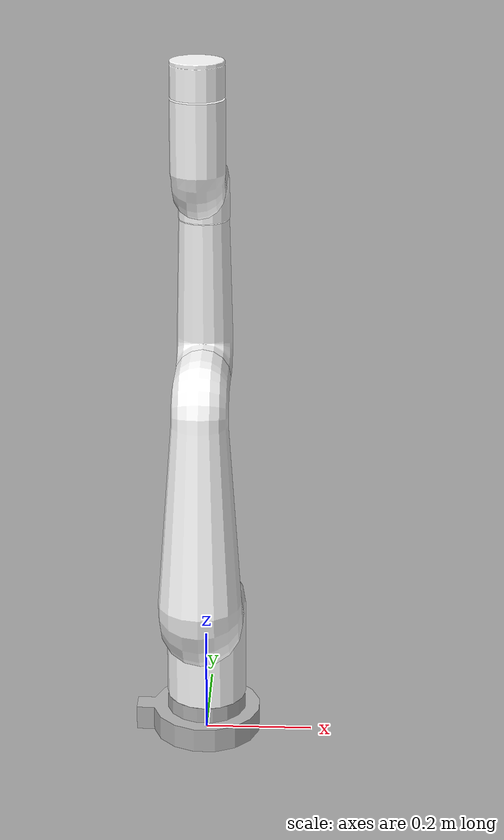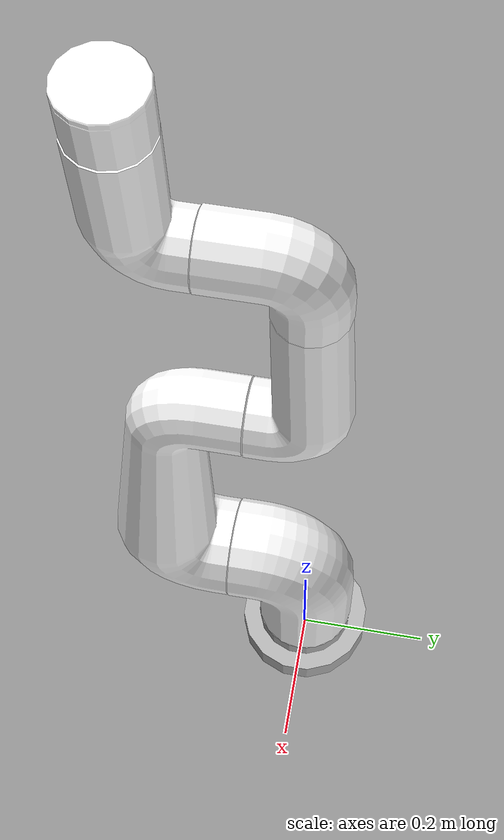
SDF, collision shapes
<?xml version="1.0"?>
<sdf version="1.7">
  <model name="indy7">
   <link name="base_link">
    <inertial>
      <pose>0 0 0 0 0 0</pose>
      <mass>1.59306955</mass>
      <inertia>
          <ixx>0.00572623</ixx>
          <ixy>0.00000251</ixy>
          <ixz>-0.00011380</ixz>
          <iyy>0.00558959</iyy>
          <iyz>-0.00000014</iyz>
          <izz>0.00966674</izz>
      </inertia>
      </inertial>

    <visual name="base_link_visual">
        <pose>0 0 0 0 0 0</pose>
      <geometry>
        <mesh>
        <uri>meshes/visual/Indy7_0.obj</uri>
        </mesh>
      </geometry>
        <material>
          <diffuse>0.7 0.7 0.7 1.0</diffuse>
        </material>
    </visual>
    <collision name="base_link_collision">
        <pose>0 0 0 0 0 0</pose>
        <geometry>
          <mesh>
          <uri>meshes/collision/Indy7_0.obj</uri>
          </mesh>
        </geometry>
    </collision>
  </link>

   <link name="shoulder_link">
    <pose >0 0 0.0775 0 0 0</pose>
    <inertial>
      <pose>0 0 0 0 0 0</pose>
      <mass>11.8030102</mass>
      <inertia>
          <ixx>0.15418559</ixx>
          <ixy>-0.00000235</ixy>
          <ixz>0.00001739</ixz>
          <iyy>0.12937017</iyy>
          <iyz>-0.04854267</iyz>
          <izz>0.05964415</izz>
      </inertia>
      </inertial>

    <visual name="shoulder_link_visual">
        <pose>0 0 0 0 0 0</pose>
      <geometry>
        <mesh>
        <uri>meshes/visual/Indy7_1.obj</uri>
        </mesh>
      </geometry>
        <material>
          <diffuse>1.0 1.0 1.0 1.0</diffuse>
        </material>
    </visual>
    <collision name="shoulder_link_collision">
        <pose>0 0 0 0 0 0</pose>
        <geometry>
          <mesh>
          <uri>meshes/collision/Indy7_1.obj</uri>
          </mesh>
        </geometry>
    </collision>
  </link>

    <joint name="joint0" type="revolute">
      <child>shoulder_link</child>
      <parent>base_link</parent>

      <axis>

        <xyz expressed_in="__model__">0 0 1</xyz>
        <limit>
          <lower>-2.96706</lower>
          <upper>2.96706</upper>
          <effort>300</effort>
          <velocity>10</velocity>
        </limit>
        <dynamics>
          <damping>0.0</damping>
          <friction>0</friction>
          <spring_reference>0</spring_reference>
          <spring_stiffness>0</spring_stiffness>
        </dynamics>
      </axis>
    </joint>

   <link name="upper_arm_link">
    <pose relative_to="shoulder_link">0 -0.109 0.222 1.57079632679 1.57079632679 0</pose>

    <inertial>
      <pose>0 0 0 0 0 0</pose>
      <mass>7.99292141</mass>
      <inertia>
          <ixx>0.29356980</ixx>
          <ixy>-0.00000040</ixy>
          <ixz>0.00001441</ixz>
          <iyy>0.28094142</iyy>
          <iyz>0.03727972</iyz>
          <izz>0.03620609</izz>
      </inertia>
      </inertial>

    <visual name="upper_arm_link_visual">
        <pose>0 0 0 0 0 0</pose>
      <geometry>
        <mesh>
        <uri>meshes/visual/Indy7_2.obj</uri>
        </mesh>
      </geometry>
        <material>
          <diffuse>1.0 1.0 1.0 1.0</diffuse>
        </material>
    </visual>
    <collision name="upper_arm_link_collision">
        <pose>0 0 0 0 0 0</pose>
        <geometry>
          <mesh>
          <uri>meshes/collision/Indy7_2.obj</uri>
          </mesh>
        </geometry>
    </collision>
  </link>

    <joint name="joint1" type="revolute">
      <parent>shoulder_link</parent>
      <child>upper_arm_link</child>
      <pose relative_to="shoulder_link">0 -0.109 0.222 1.57079632679 1.57079632679 0</pose>
      <axis>
        <xyz expressed_in="__model__">0 -1 0</xyz>
        <limit>
          <lower>-3.05432619099</lower>
          <upper>3.05432619099</upper>
          <effort>1000</effort>
          <velocity>1</velocity>
        </limit>
        <dynamics>
          <damping>0.0</damping>
          <friction>0</friction>
          <spring_reference>0</spring_reference>
          <spring_stiffness>0</spring_stiffness>
        </dynamics>
      </axis>
    </joint>

   <link name="forearm_link">
    <pose relative_to="upper_arm_link">-0.45000000 0 -0.03050000 0 0 0</pose>
    <inertial>
      <pose>0 0 0 0 0 0</pose>
    <mass>2.99134127</mass>
    <inertia>
      <ixx>0.03424593</ixx>
      <ixy>0.00000149</ixy>
      <ixz>0.00000724</ixz>
      <iyy>0.03406024</iyy>
      <iyz>0.00186009</iyz>
      <izz>0.00450477</izz>
    </inertia>
      </inertial>

    <visual name="forearm_link_visual">
        <pose>0 0 0 0 0 0</pose>
      <geometry>
        <mesh>
        <uri>meshes/visual/Indy7_3.obj</uri>
        </mesh>
      </geometry>
        <material>
          <diffuse>1.0 1.0 1.0 1.0</diffuse>
        </material>
    </visual>
    <collision name="forearm_link_collision">
        <pose>0 0 0 0 0 0</pose>
        <geometry>
          <mesh>
          <uri>meshes/collision/Indy7_3.obj</uri>
          </mesh>
        </geometry>
    </collision>
  </link>

    <joint name="joint2" type="revolute">
      <parent>upper_arm_link</parent>
      <child>forearm_link</child>
      <pose relative_to="upper_arm_link">-0.45000000 0 -0.03050000 0 0 0</pose>
      <axis>
        <xyz expressed_in="__model__">0 -1 0</xyz>
        <limit>
          <lower>-3.05432619099</lower>
          <upper>3.05432619099</upper>
          <effort>1000</effort>
          <velocity>1</velocity>
        </limit>
        <dynamics>
          <damping>0.0</damping>
          <friction>0</friction>
          <spring_reference>0</spring_reference>
          <spring_stiffness>0</spring_stiffness>
        </dynamics>
      </axis>
    </joint>

   <link name="wrist_1_link">

      <pose relative_to="forearm_link">-0.26700000 +0.00000000 -0.07500000 -1.57079632679 0 1.57079632679 </pose>
    <inertial>
      <pose>0 0 0 0 0 0</pose>
    <mass>2.12317035</mass>
    <inertia>
      <ixx>0.00670405</ixx>
      <ixy>0.00000375</ixy>
      <ixz>0.00000150</ixz>
      <iyy>0.00279246</iyy>
      <iyz>-0.00127967</iyz>
      <izz>0.00619341</izz>
    </inertia>
      </inertial>

    <visual name="wrist_1_link_visual">
        <pose>0 0 0 0 0 0</pose>
      <geometry>
        <mesh>
        <uri>meshes/visual/Indy7_4.obj</uri>
        </mesh>
      </geometry>
        <material>
          <diffuse>1.0 1.0 1.0 1.0</diffuse>
        </material>
    </visual>
    <collision name="wrist_1_link_collision">
        <pose>0 0 0 0 0 0</pose>
        <geometry>
          <mesh>
          <uri>meshes/collision/Indy7_4.obj</uri>
          </mesh>
        </geometry>
    </collision>
  </link>

    <joint name="joint3" type="revolute">
      <parent>forearm_link</parent>
      <child>wrist_1_link</child>
      <pose relative_to="forearm_link">-0.26700000 +0.00000000 -0.07500000 -1.57079632679 0 1.57079632679 </pose>
      <axis>
        <xyz expressed_in="__model__">0 0 1</xyz>
        <limit>
          <lower>-3.05432619099</lower>
          <upper>3.05432619099</upper>
          <effort>1000</effort>
          <velocity>1</velocity>
        </limit>
        <dynamics>
          <damping>0.0</damping>
          <friction>0</friction>
          <spring_reference>0</spring_reference>
          <spring_stiffness>0</spring_stiffness>
        </dynamics>
      </axis>
    </joint>

   <link name="wrist_2_link">

      <pose relative_to="wrist_1_link">0.00000000 -0.11400000 +0.08300000 1.57079632679 1.57079632679 0</pose>
    <inertial>
      <pose>0 0 0 0 0 0</pose>
    <mass>2.28865091</mass>
    <inertia>
      <ixx>0.00994891</ixx>
      <ixy>0.00000014</ixy>
      <ixz>0.00000321</ixz>
      <iyy>0.00978189</iyy>
      <iyz>-0.00093546</iyz>
      <izz>0.00271492</izz>
    </inertia>
      </inertial>

    <visual name="wrist_2_link_visual">
        <pose>0 0 0 0 0 0</pose>
      <geometry>
        <mesh>
        <uri>meshes/visual/Indy7_5.obj</uri>
        </mesh>
      </geometry>
        <material>
          <diffuse>1.0 1.0 1.0 1.0</diffuse>
        </material>
    </visual>
    <collision name="wrist_2_link_collision">
        <pose>0 0 0 0 0 0</pose>
        <geometry>
          <mesh>
          <uri>meshes/collision/Indy7_5.obj</uri>
          </mesh>
        </geometry>
    </collision>
  </link>

    <joint name="joint4" type="revolute">
      <parent>wrist_1_link</parent>
      <child>wrist_2_link</child>
      <pose relative_to="wrist_1_link">0.00000000 -0.11400000 +0.08300000 1.57079632679 1.57079632679 0</pose>
      <axis>
        <xyz expressed_in="__model__">0 -1 0</xyz>
        <limit>
          <lower>-3.05432619099</lower>
          <upper>3.05432619099</upper>
          <effort>1000</effort>
          <velocity>1</velocity>
        </limit>
        <dynamics>
          <damping>0.0</damping>
          <friction>0</friction>
          <spring_reference>0</spring_reference>
          <spring_stiffness>0</spring_stiffness>
        </dynamics>
      </axis>
    </joint>

   <link name="wrist_3_link">

      <pose relative_to="wrist_2_link">-0.16800000 +0.00000000 +0.06900000 -1.57079632679 0 1.57079632679</pose>
    <inertial>
      <pose>0 0 0 0 0 0</pose>
    <mass>0.40083918</mass>
    <inertia>
      <ixx>0.00043534</ixx>
      <ixy>0.00000013</ixy>
      <ixz>-0.00000002</ixz>
      <iyy>0.00044549</iyy>
      <iyz>0.00000051</iyz>
      <izz>0.00059634</izz>
    </inertia>
      </inertial>

    <visual name="wrist_3_link_visual">
        <pose>0 0 0 0 0 0</pose>
      <geometry>
        <mesh>
        <uri>meshes/visual/Indy7_6.obj</uri>
        </mesh>
      </geometry>
        <material>
          <diffuse>1.0 1.0 1.0 1.0</diffuse>
        </material>
    </visual>
    <collision name="wrist_3_link_collision">
        <pose>0 0 0 0 0 0</pose>
        <geometry>
          <mesh>
          <uri>meshes/collision/Indy7_6.obj</uri>
          </mesh>
        </geometry>
    </collision>
  </link>

    <joint name="joint5" type="revolute">
      <parent>wrist_2_link</parent>
      <child>wrist_3_link</child>
      <pose relative_to="wrist_2_link">-0.16800000 +0.00000000 +0.06900000 -1.57079632679 0 1.57079632679</pose>
      <axis>
        <xyz expressed_in="__model__">0 0 1</xyz>
        <limit>
          <lower>-3.05432619099</lower>
          <upper>3.05432619099</upper>
          <effort>1000</effort>
          <velocity>1</velocity>
        </limit>
        <dynamics>
          <damping>0.0</damping>
          <friction>0</friction>
          <spring_reference>0</spring_reference>
          <spring_stiffness>0</spring_stiffness>
        </dynamics>
      </axis>
    </joint>

  <link name="tcp">

      <pose relative_to="wrist_3_link">0 0 0.06 0 0 0</pose>
    <inertial>
      <pose>0 0 0 0 0 0</pose>
    <mass>0.0</mass>
    <inertia>
      <ixx>0.0</ixx>
      <ixy>0.0</ixy>
      <ixz>0.0</ixz>
      <iyy>0.0</iyy>
      <iyz>0.0</iyz>
      <izz>0.0</izz>
    </inertia>
      </inertial>

    <visual name="tcp_visual">
        <pose>0 0 0 1.570796 0 0</pose>
      <geometry>
        <mesh>
        <scale> 0.01 0.01 0.01 </scale>
        <uri>meshes/visual/axis.obj</uri>
        </mesh>
      </geometry>
        <material>
          <diffuse>1.0 1.0 1.0 1.0</diffuse>
        </material>
    </visual>
    <collision name="tcp_collision">
        <pose>0 0 0 0 0 0</pose>
    </collision>
  </link>

    <joint name="tcp_joint" type="fixed">
      <parent>wrist_3_link</parent>
      <child>tcp</child>
      <pose relative_to="wrist_3_link">0 0 0.06 0 0 0</pose>
    </joint>

  </model>
</sdf>
